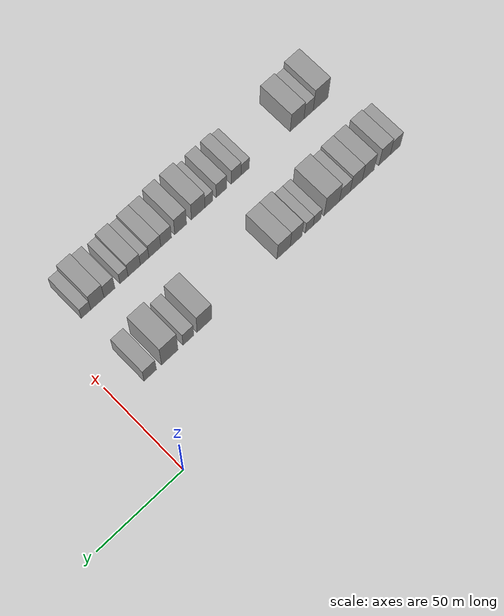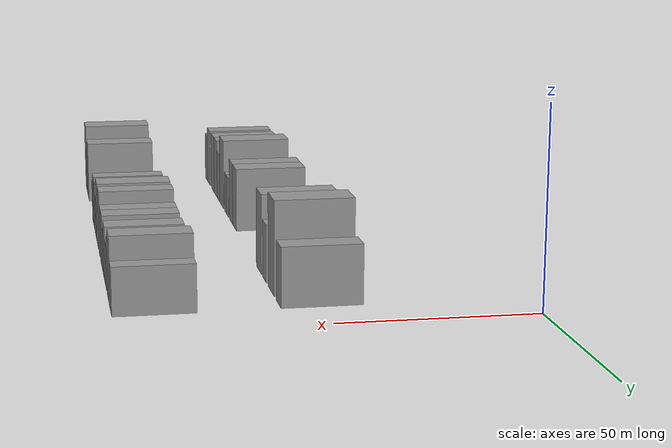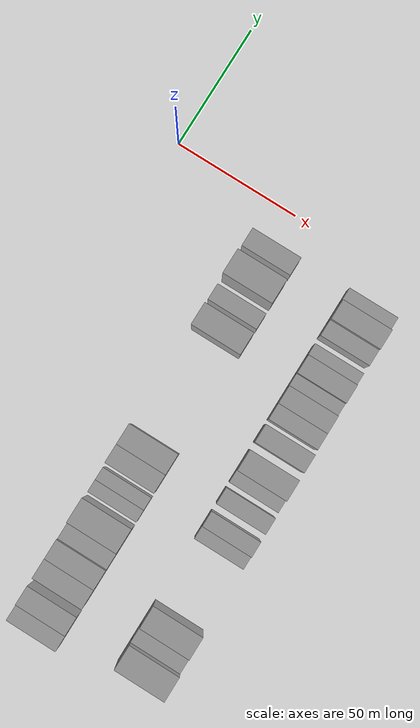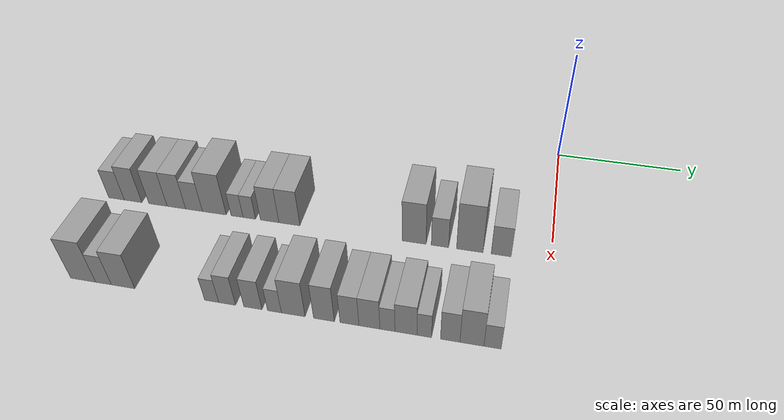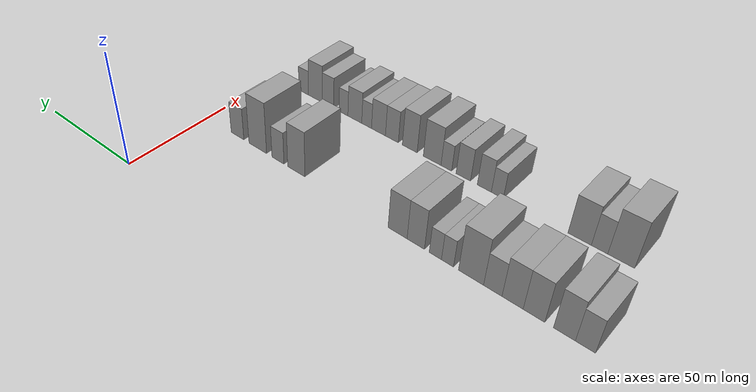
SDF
<sdf version="1.6">
 <world name="default">
  <model name="building_15">
   <static>1</static>
   <pose>50.0000 -171.0333 0 0.000000 0.000000 0.000000</pose>
   <link name="link">
    <pose>0 0 7.50 0 0 0</pose>
    <collision name="collision"><geometry><box><size>20.0000 6.6499 15.0000</size></box></geometry></collision>
    <visual name="visual">
     <cast_shadows>0</cast_shadows>
     <geometry><box><size>20.0000 6.6499 15.0000</size></box></geometry>
     <material>
      <script>
       <uri>model://grey_wall/materials/scripts</uri>
       <uri>model://grey_wall/materials/textures</uri>
       <name>vrc/grey_wall</name>
      </script>
     </material>
    </visual>
   </link>
  </model>
  <model name="building_16">
   <static>1</static>
   <pose>50.0000 -163.9777 0 0.000000 0.000000 0.000000</pose>
   <link name="link">
    <pose>0 0 9.00 0 0 0</pose>
    <collision name="collision"><geometry><box><size>20.0000 7.4614 18.0000</size></box></geometry></collision>
    <visual name="visual">
     <cast_shadows>0</cast_shadows>
     <geometry><box><size>20.0000 7.4614 18.0000</size></box></geometry>
     <material>
      <script>
       <uri>model://grey_wall/materials/scripts</uri>
       <uri>model://grey_wall/materials/textures</uri>
       <name>vrc/grey_wall</name>
      </script>
     </material>
    </visual>
   </link>
  </model>
  <model name="building_17">
   <static>1</static>
   <pose>50.0000 -153.3974 0 0.000000 0.000000 0.000000</pose>
   <link name="link">
    <pose>0 0 9.00 0 0 0</pose>
    <collision name="collision"><geometry><box><size>20.0000 7.6990 18.0000</size></box></geometry></collision>
    <visual name="visual">
     <cast_shadows>0</cast_shadows>
     <geometry><box><size>20.0000 7.6990 18.0000</size></box></geometry>
     <material>
      <script>
       <uri>model://grey_wall/materials/scripts</uri>
       <uri>model://grey_wall/materials/textures</uri>
       <name>vrc/grey_wall</name>
      </script>
     </material>
    </visual>
   </link>
  </model>
  <model name="building_18">
   <static>1</static>
   <pose>50.0000 -145.6617 0 0.000000 0.000000 0.000000</pose>
   <link name="link">
    <pose>0 0 9.00 0 0 0</pose>
    <collision name="collision"><geometry><box><size>20.0000 7.7725 18.0000</size></box></geometry></collision>
    <visual name="visual">
     <cast_shadows>0</cast_shadows>
     <geometry><box><size>20.0000 7.7725 18.0000</size></box></geometry>
     <material>
      <script>
       <uri>model://grey_wall/materials/scripts</uri>
       <uri>model://grey_wall/materials/textures</uri>
       <name>vrc/grey_wall</name>
      </script>
     </material>
    </visual>
   </link>
  </model>
  <model name="building_19">
   <static>1</static>
   <pose>50.0000 -138.2961 0 0.000000 0.000000 0.000000</pose>
   <link name="link">
    <pose>0 0 7.50 0 0 0</pose>
    <collision name="collision"><geometry><box><size>20.0000 6.9588 15.0000</size></box></geometry></collision>
    <visual name="visual">
     <cast_shadows>0</cast_shadows>
     <geometry><box><size>20.0000 6.9588 15.0000</size></box></geometry>
     <material>
      <script>
       <uri>model://grey_wall/materials/scripts</uri>
       <uri>model://grey_wall/materials/textures</uri>
       <name>vrc/grey_wall</name>
      </script>
     </material>
    </visual>
   </link>
  </model>
  <model name="building_20">
   <static>1</static>
   <pose>50.0000 -129.9064 0 0.000000 0.000000 0.000000</pose>
   <link name="link">
    <pose>0 0 10.50 0 0 0</pose>
    <collision name="collision"><geometry><box><size>20.0000 9.8205 21.0000</size></box></geometry></collision>
    <visual name="visual">
     <cast_shadows>0</cast_shadows>
     <geometry><box><size>20.0000 9.8205 21.0000</size></box></geometry>
     <material>
      <script>
       <uri>model://grey_wall/materials/scripts</uri>
       <uri>model://grey_wall/materials/textures</uri>
       <name>vrc/grey_wall</name>
      </script>
     </material>
    </visual>
   </link>
  </model>
  <model name="building_21">
   <static>1</static>
   <pose>50.0000 -120.5485 0 0.000000 0.000000 0.000000</pose>
   <link name="link">
    <pose>0 0 6.00 0 0 0</pose>
    <collision name="collision"><geometry><box><size>20.0000 4.8953 12.0000</size></box></geometry></collision>
    <visual name="visual">
     <cast_shadows>0</cast_shadows>
     <geometry><box><size>20.0000 4.8953 12.0000</size></box></geometry>
     <material>
      <script>
       <uri>model://grey_wall/materials/scripts</uri>
       <uri>model://grey_wall/materials/textures</uri>
       <name>vrc/grey_wall</name>
      </script>
     </material>
    </visual>
   </link>
  </model>
  <model name="building_22">
   <static>1</static>
   <pose>50.0000 -115.5680 0 0.000000 0.000000 0.000000</pose>
   <link name="link">
    <pose>0 0 6.00 0 0 0</pose>
    <collision name="collision"><geometry><box><size>20.0000 5.0657 12.0000</size></box></geometry></collision>
    <visual name="visual">
     <cast_shadows>0</cast_shadows>
     <geometry><box><size>20.0000 5.0657 12.0000</size></box></geometry>
     <material>
      <script>
       <uri>model://grey_wall/materials/scripts</uri>
       <uri>model://grey_wall/materials/textures</uri>
       <name>vrc/grey_wall</name>
      </script>
     </material>
    </visual>
   </link>
  </model>
  <model name="building_23">
   <static>1</static>
   <pose>50.0000 -107.3214 0 0.000000 0.000000 0.000000</pose>
   <link name="link">
    <pose>0 0 9.00 0 0 0</pose>
    <collision name="collision"><geometry><box><size>20.0000 7.4274 18.0000</size></box></geometry></collision>
    <visual name="visual">
     <cast_shadows>0</cast_shadows>
     <geometry><box><size>20.0000 7.4274 18.0000</size></box></geometry>
     <material>
      <script>
       <uri>model://grey_wall/materials/scripts</uri>
       <uri>model://grey_wall/materials/textures</uri>
       <name>vrc/grey_wall</name>
      </script>
     </material>
    </visual>
   </link>
  </model>
  <model name="building_24">
   <static>1</static>
   <pose>50.0000 -99.4239 0 0.000000 0.000000 0.000000</pose>
   <link name="link">
    <pose>0 0 9.00 0 0 0</pose>
    <collision name="collision"><geometry><box><size>20.0000 8.3677 18.0000</size></box></geometry></collision>
    <visual name="visual">
     <cast_shadows>0</cast_shadows>
     <geometry><box><size>20.0000 8.3677 18.0000</size></box></geometry>
     <material>
      <script>
       <uri>model://grey_wall/materials/scripts</uri>
       <uri>model://grey_wall/materials/textures</uri>
       <name>vrc/grey_wall</name>
      </script>
     </material>
    </visual>
   </link>
  </model>
  <model name="building_25">
   <static>1</static>
   <pose>50.0000 -50.7242 0 0.000000 0.000000 0.000000</pose>
   <link name="link">
    <pose>0 0 10.50 0 0 0</pose>
    <collision name="collision"><geometry><box><size>20.0000 9.0105 21.0000</size></box></geometry></collision>
    <visual name="visual">
     <cast_shadows>0</cast_shadows>
     <geometry><box><size>20.0000 9.0105 21.0000</size></box></geometry>
     <material>
      <script>
       <uri>model://grey_wall/materials/scripts</uri>
       <uri>model://grey_wall/materials/textures</uri>
       <name>vrc/grey_wall</name>
      </script>
     </material>
    </visual>
   </link>
  </model>
  <model name="building_26">
   <static>1</static>
   <pose>50.0000 -40.9779 0 0.000000 0.000000 0.000000</pose>
   <link name="link">
    <pose>0 0 7.50 0 0 0</pose>
    <collision name="collision"><geometry><box><size>20.0000 6.4822 15.0000</size></box></geometry></collision>
    <visual name="visual">
     <cast_shadows>0</cast_shadows>
     <geometry><box><size>20.0000 6.4822 15.0000</size></box></geometry>
     <material>
      <script>
       <uri>model://grey_wall/materials/scripts</uri>
       <uri>model://grey_wall/materials/textures</uri>
       <name>vrc/grey_wall</name>
      </script>
     </material>
    </visual>
   </link>
  </model>
  <model name="building_27">
   <static>1</static>
   <pose>50.0000 -29.8061 0 0.000000 0.000000 0.000000</pose>
   <link name="link">
    <pose>0 0 12.00 0 0 0</pose>
    <collision name="collision"><geometry><box><size>20.0000 9.8613 24.0000</size></box></geometry></collision>
    <visual name="visual">
     <cast_shadows>0</cast_shadows>
     <geometry><box><size>20.0000 9.8613 24.0000</size></box></geometry>
     <material>
      <script>
       <uri>model://grey_wall/materials/scripts</uri>
       <uri>model://grey_wall/materials/textures</uri>
       <name>vrc/grey_wall</name>
      </script>
     </material>
    </visual>
   </link>
  </model>
  <model name="building_28">
   <static>1</static>
   <pose>50.0000 -18.1943 0 0.000000 0.000000 0.000000</pose>
   <link name="link">
    <pose>0 0 7.50 0 0 0</pose>
    <collision name="collision"><geometry><box><size>20.0000 7.3623 15.0000</size></box></geometry></collision>
    <visual name="visual">
     <cast_shadows>0</cast_shadows>
     <geometry><box><size>20.0000 7.3623 15.0000</size></box></geometry>
     <material>
      <script>
       <uri>model://grey_wall/materials/scripts</uri>
       <uri>model://grey_wall/materials/textures</uri>
       <name>vrc/grey_wall</name>
      </script>
     </material>
    </visual>
   </link>
  </model>
  <model name="building_79">
   <static>1</static>
   <pose>90.0000 -162.9646 0 0.000000 0.000000 0.000000</pose>
   <link name="link">
    <pose>0 0 10.50 0 0 0</pose>
    <collision name="collision"><geometry><box><size>20.0000 9.6606 21.0000</size></box></geometry></collision>
    <visual name="visual">
     <cast_shadows>0</cast_shadows>
     <geometry><box><size>20.0000 9.6606 21.0000</size></box></geometry>
     <material>
      <script>
       <uri>model://grey_wall/materials/scripts</uri>
       <uri>model://grey_wall/materials/textures</uri>
       <name>vrc/grey_wall</name>
      </script>
     </material>
    </visual>
   </link>
  </model>
  <model name="building_80">
   <static>1</static>
   <pose>90.0000 -155.1130 0 0.000000 0.000000 0.000000</pose>
   <link name="link">
    <pose>0 0 7.50 0 0 0</pose>
    <collision name="collision"><geometry><box><size>20.0000 6.0426 15.0000</size></box></geometry></collision>
    <visual name="visual">
     <cast_shadows>0</cast_shadows>
     <geometry><box><size>20.0000 6.0426 15.0000</size></box></geometry>
     <material>
      <script>
       <uri>model://grey_wall/materials/scripts</uri>
       <uri>model://grey_wall/materials/textures</uri>
       <name>vrc/grey_wall</name>
      </script>
     </material>
    </visual>
   </link>
  </model>
  <model name="building_81">
   <static>1</static>
   <pose>90.0000 -147.6505 0 0.000000 0.000000 0.000000</pose>
   <link name="link">
    <pose>0 0 9.00 0 0 0</pose>
    <collision name="collision"><geometry><box><size>20.0000 8.8825 18.0000</size></box></geometry></collision>
    <visual name="visual">
     <cast_shadows>0</cast_shadows>
     <geometry><box><size>20.0000 8.8825 18.0000</size></box></geometry>
     <material>
      <script>
       <uri>model://grey_wall/materials/scripts</uri>
       <uri>model://grey_wall/materials/textures</uri>
       <name>vrc/grey_wall</name>
      </script>
     </material>
    </visual>
   </link>
  </model>
  <model name="building_82">
   <static>1</static>
   <pose>90.0000 -114.4663 0 0.000000 0.000000 0.000000</pose>
   <link name="link">
    <pose>0 0 6.00 0 0 0</pose>
    <collision name="collision"><geometry><box><size>20.0000 5.1620 12.0000</size></box></geometry></collision>
    <visual name="visual">
     <cast_shadows>0</cast_shadows>
     <geometry><box><size>20.0000 5.1620 12.0000</size></box></geometry>
     <material>
      <script>
       <uri>model://grey_wall/materials/scripts</uri>
       <uri>model://grey_wall/materials/textures</uri>
       <name>vrc/grey_wall</name>
      </script>
     </material>
    </visual>
   </link>
  </model>
  <model name="building_83">
   <static>1</static>
   <pose>90.0000 -108.8136 0 0.000000 0.000000 0.000000</pose>
   <link name="link">
    <pose>0 0 7.50 0 0 0</pose>
    <collision name="collision"><geometry><box><size>20.0000 6.1434 15.0000</size></box></geometry></collision>
    <visual name="visual">
     <cast_shadows>0</cast_shadows>
     <geometry><box><size>20.0000 6.1434 15.0000</size></box></geometry>
     <material>
      <script>
       <uri>model://grey_wall/materials/scripts</uri>
       <uri>model://grey_wall/materials/textures</uri>
       <name>vrc/grey_wall</name>
      </script>
     </material>
    </visual>
   </link>
  </model>
  <model name="building_84">
   <static>1</static>
   <pose>90.0000 -99.4643 0 0.000000 0.000000 0.000000</pose>
   <link name="link">
    <pose>0 0 7.50 0 0 0</pose>
    <collision name="collision"><geometry><box><size>20.0000 6.5550 15.0000</size></box></geometry></collision>
    <visual name="visual">
     <cast_shadows>0</cast_shadows>
     <geometry><box><size>20.0000 6.5550 15.0000</size></box></geometry>
     <material>
      <script>
       <uri>model://grey_wall/materials/scripts</uri>
       <uri>model://grey_wall/materials/textures</uri>
       <name>vrc/grey_wall</name>
      </script>
     </material>
    </visual>
   </link>
  </model>
  <model name="building_85">
   <static>1</static>
   <pose>90.0000 -91.7028 0 0.000000 0.000000 0.000000</pose>
   <link name="link">
    <pose>0 0 6.00 0 0 0</pose>
    <collision name="collision"><geometry><box><size>20.0000 4.9681 12.0000</size></box></geometry></collision>
    <visual name="visual">
     <cast_shadows>0</cast_shadows>
     <geometry><box><size>20.0000 4.9681 12.0000</size></box></geometry>
     <material>
      <script>
       <uri>model://grey_wall/materials/scripts</uri>
       <uri>model://grey_wall/materials/textures</uri>
       <name>vrc/grey_wall</name>
      </script>
     </material>
    </visual>
   </link>
  </model>
  <model name="building_86">
   <static>1</static>
   <pose>90.0000 -85.0192 0 0.000000 0.000000 0.000000</pose>
   <link name="link">
    <pose>0 0 9.00 0 0 0</pose>
    <collision name="collision"><geometry><box><size>20.0000 8.3992 18.0000</size></box></geometry></collision>
    <visual name="visual">
     <cast_shadows>0</cast_shadows>
     <geometry><box><size>20.0000 8.3992 18.0000</size></box></geometry>
     <material>
      <script>
       <uri>model://grey_wall/materials/scripts</uri>
       <uri>model://grey_wall/materials/textures</uri>
       <name>vrc/grey_wall</name>
      </script>
     </material>
    </visual>
   </link>
  </model>
  <model name="building_87">
   <static>1</static>
   <pose>90.0000 -74.1754 0 0.000000 0.000000 0.000000</pose>
   <link name="link">
    <pose>0 0 9.00 0 0 0</pose>
    <collision name="collision"><geometry><box><size>20.0000 7.2883 18.0000</size></box></geometry></collision>
    <visual name="visual">
     <cast_shadows>0</cast_shadows>
     <geometry><box><size>20.0000 7.2883 18.0000</size></box></geometry>
     <material>
      <script>
       <uri>model://grey_wall/materials/scripts</uri>
       <uri>model://grey_wall/materials/textures</uri>
       <name>vrc/grey_wall</name>
      </script>
     </material>
    </visual>
   </link>
  </model>
  <model name="building_88">
   <static>1</static>
   <pose>90.0000 -65.2618 0 0.000000 0.000000 0.000000</pose>
   <link name="link">
    <pose>0 0 7.50 0 0 0</pose>
    <collision name="collision"><geometry><box><size>20.0000 6.5390 15.0000</size></box></geometry></collision>
    <visual name="visual">
     <cast_shadows>0</cast_shadows>
     <geometry><box><size>20.0000 6.5390 15.0000</size></box></geometry>
     <material>
      <script>
       <uri>model://grey_wall/materials/scripts</uri>
       <uri>model://grey_wall/materials/textures</uri>
       <name>vrc/grey_wall</name>
      </script>
     </material>
    </visual>
   </link>
  </model>
  <model name="building_89">
   <static>1</static>
   <pose>90.0000 -58.3714 0 0.000000 0.000000 0.000000</pose>
   <link name="link">
    <pose>0 0 7.50 0 0 0</pose>
    <collision name="collision"><geometry><box><size>20.0000 7.2419 15.0000</size></box></geometry></collision>
    <visual name="visual">
     <cast_shadows>0</cast_shadows>
     <geometry><box><size>20.0000 7.2419 15.0000</size></box></geometry>
     <material>
      <script>
       <uri>model://grey_wall/materials/scripts</uri>
       <uri>model://grey_wall/materials/textures</uri>
       <name>vrc/grey_wall</name>
      </script>
     </material>
    </visual>
   </link>
  </model>
  <model name="building_90">
   <static>1</static>
   <pose>90.0000 -52.1600 0 0.000000 0.000000 0.000000</pose>
   <link name="link">
    <pose>0 0 6.00 0 0 0</pose>
    <collision name="collision"><geometry><box><size>20.0000 5.1808 12.0000</size></box></geometry></collision>
    <visual name="visual">
     <cast_shadows>0</cast_shadows>
     <geometry><box><size>20.0000 5.1808 12.0000</size></box></geometry>
     <material>
      <script>
       <uri>model://grey_wall/materials/scripts</uri>
       <uri>model://grey_wall/materials/textures</uri>
       <name>vrc/grey_wall</name>
      </script>
     </material>
    </visual>
   </link>
  </model>
  <model name="building_91">
   <static>1</static>
   <pose>90.0000 -45.8330 0 0.000000 0.000000 0.000000</pose>
   <link name="link">
    <pose>0 0 7.50 0 0 0</pose>
    <collision name="collision"><geometry><box><size>20.0000 7.4730 15.0000</size></box></geometry></collision>
    <visual name="visual">
     <cast_shadows>0</cast_shadows>
     <geometry><box><size>20.0000 7.4730 15.0000</size></box></geometry>
     <material>
      <script>
       <uri>model://grey_wall/materials/scripts</uri>
       <uri>model://grey_wall/materials/textures</uri>
       <name>vrc/grey_wall</name>
      </script>
     </material>
    </visual>
   </link>
  </model>
  <model name="building_92">
   <static>1</static>
   <pose>90.0000 -39.6450 0 0.000000 0.000000 0.000000</pose>
   <link name="link">
    <pose>0 0 6.00 0 0 0</pose>
    <collision name="collision"><geometry><box><size>20.0000 4.9031 12.0000</size></box></geometry></collision>
    <visual name="visual">
     <cast_shadows>0</cast_shadows>
     <geometry><box><size>20.0000 4.9031 12.0000</size></box></geometry>
     <material>
      <script>
       <uri>model://grey_wall/materials/scripts</uri>
       <uri>model://grey_wall/materials/textures</uri>
       <name>vrc/grey_wall</name>
      </script>
     </material>
    </visual>
   </link>
  </model>
  <model name="building_93">
   <static>1</static>
   <pose>90.0000 -30.9460 0 0.000000 0.000000 0.000000</pose>
   <link name="link">
    <pose>0 0 7.50 0 0 0</pose>
    <collision name="collision"><geometry><box><size>20.0000 6.4949 15.0000</size></box></geometry></collision>
    <visual name="visual">
     <cast_shadows>0</cast_shadows>
     <geometry><box><size>20.0000 6.4949 15.0000</size></box></geometry>
     <material>
      <script>
       <uri>model://grey_wall/materials/scripts</uri>
       <uri>model://grey_wall/materials/textures</uri>
       <name>vrc/grey_wall</name>
      </script>
     </material>
    </visual>
   </link>
  </model>
  <model name="building_94">
   <static>1</static>
   <pose>90.0000 -23.7295 0 0.000000 0.000000 0.000000</pose>
   <link name="link">
    <pose>0 0 9.00 0 0 0</pose>
    <collision name="collision"><geometry><box><size>20.0000 7.9380 18.0000</size></box></geometry></collision>
    <visual name="visual">
     <cast_shadows>0</cast_shadows>
     <geometry><box><size>20.0000 7.9380 18.0000</size></box></geometry>
     <material>
      <script>
       <uri>model://grey_wall/materials/scripts</uri>
       <uri>model://grey_wall/materials/textures</uri>
       <name>vrc/grey_wall</name>
      </script>
     </material>
    </visual>
   </link>
  </model>
  <model name="building_95">
   <static>1</static>
   <pose>90.0000 -16.9253 0 0.000000 0.000000 0.000000</pose>
   <link name="link">
    <pose>0 0 6.00 0 0 0</pose>
    <collision name="collision"><geometry><box><size>20.0000 5.6704 12.0000</size></box></geometry></collision>
    <visual name="visual">
     <cast_shadows>0</cast_shadows>
     <geometry><box><size>20.0000 5.6704 12.0000</size></box></geometry>
     <material>
      <script>
       <uri>model://grey_wall/materials/scripts</uri>
       <uri>model://grey_wall/materials/textures</uri>
       <name>vrc/grey_wall</name>
      </script>
     </material>
    </visual>
   </link>
  </model>
 </world>
</sdf>
